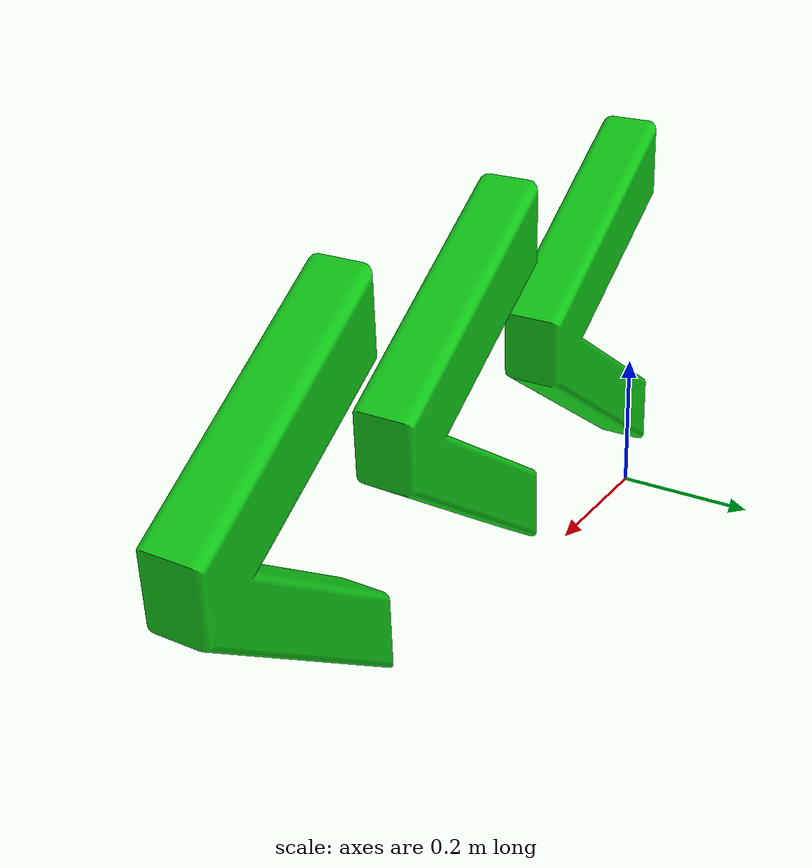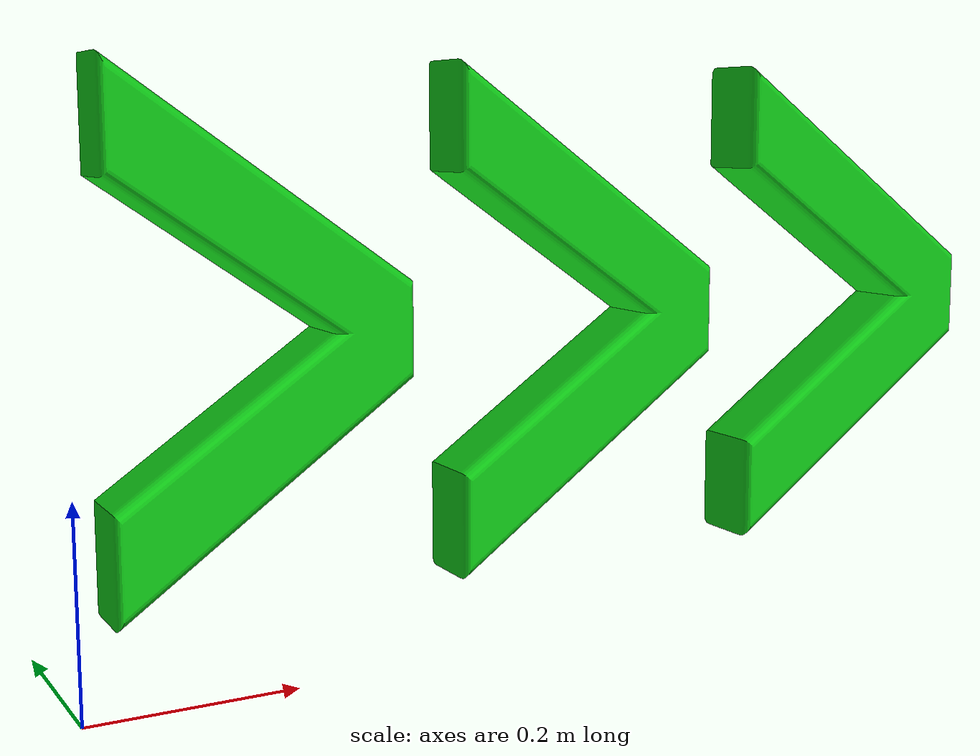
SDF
<?xml version="1.0" ?>
<sdf version='1.5'>
<model name='arrow'>
<static>true</static>
<link name="link">
   <pose frame=''>0 0 0 1.57 0 0</pose>
  <visual name='visual'>
    <cast_shadows>false</cast_shadows>
    <geometry>
      <mesh>
        <scale>1.0 1.0 1.0</scale>
        <uri>model://arrow/untitled2.dae</uri>
      </mesh>
    </geometry>
  </visual>
</link>
</model>
</sdf>
